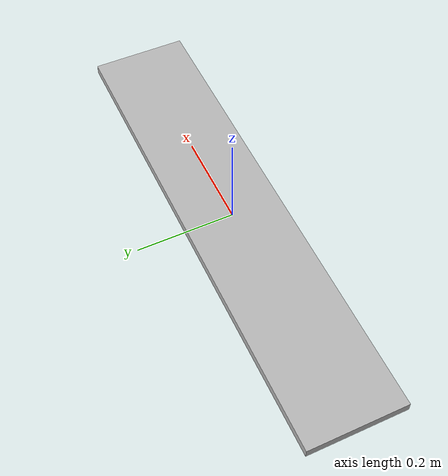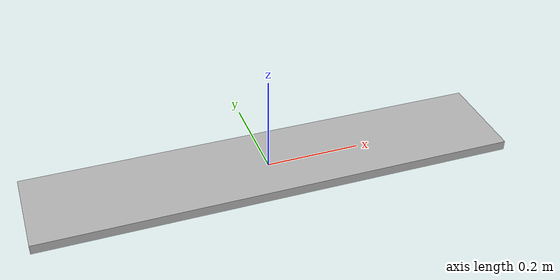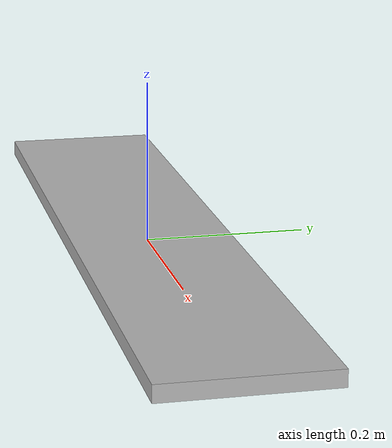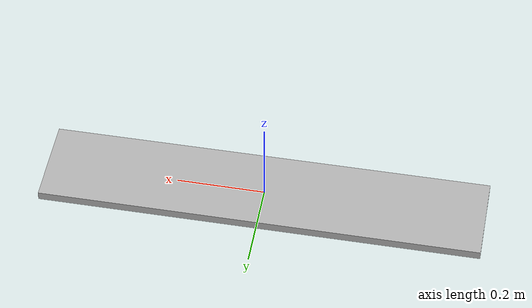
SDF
<?xml version="1.0" ?>
<sdf version="1.5">
  <model name="dia_panel">
    <static>true</static>
    <link name="link">
      <collision name="surface">
        <pose>0 0 0 0 0 0</pose>
        <geometry>
          <box>
            <size>1.0 0.2 0.02</size>
          </box>
        </geometry>
      </collision>
      <visual name="surface">
        <pose>0 0 0 0 0 0</pose>
        <geometry>
          <box>
            <size>1.0 0.2 0.02</size>
          </box>
        </geometry>
        <material>
          <script>
            <uri>model://dia_panel/materials/scripts</uri>
            <uri>model://dia_panel/materials/textures</uri>
            <name>dia_panel/Diffuse</name>
          </script>
        </material>
      </visual>
    </link>
  </model>
</sdf>
